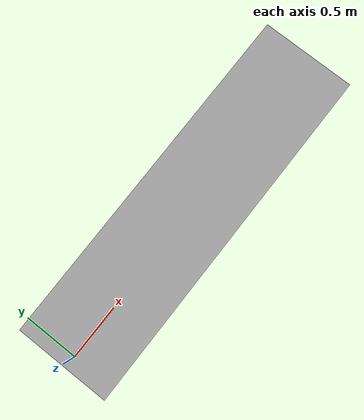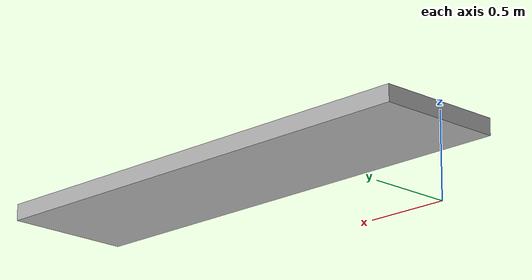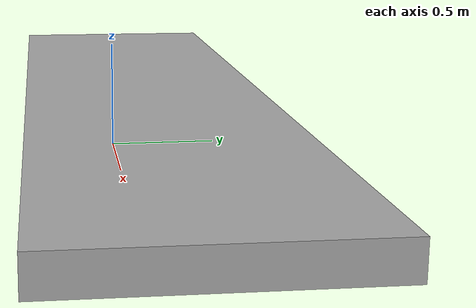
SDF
<?xml version="1.0"?>
<sdf version="1.6">
  <model name="ramp">
    <static>true</static>
    <link name="ramp_link">
      <collision name="ramp_collision">
        <geometry>
          <box>
            <size>3.0 0.8 0.1</size>
          </box>
        </geometry>
        <pose>1.5 0 0.5 0 0 0</pose>
      </collision>
      <visual name="ramp_visual">
        <geometry>
          <box>
            <size>3.0 0.8 0.1</size>
          </box>
        </geometry>
        <pose>1.5 0 0.5 0 0 0</pose>
        <material>
          <ambient>0.5 0.5 0.5 1</ambient>
          <diffuse>0.7 0.7 0.7 1</diffuse>
          <specular>0.2 0.2 0.2 1</specular>
        </material>
      </visual>
    </link>
  </model>
</sdf>
